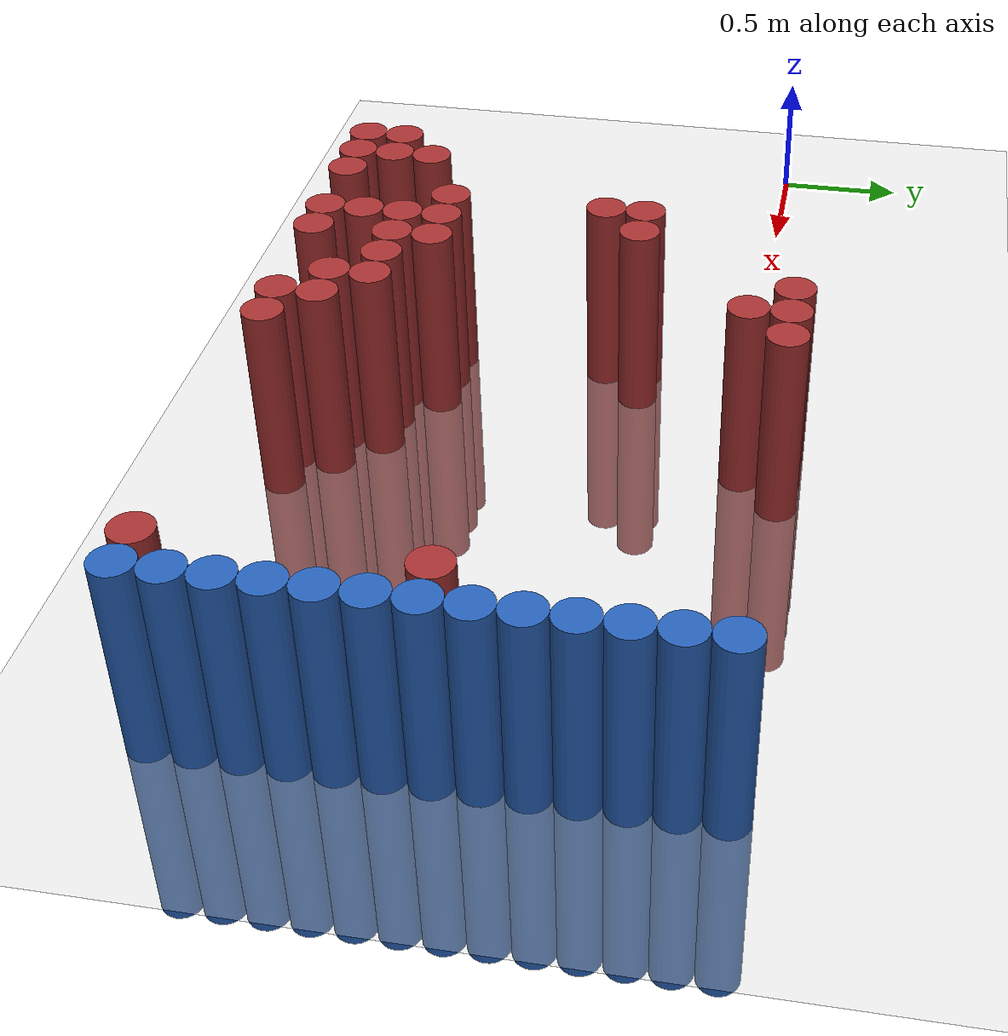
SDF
<sdf version="1.6">
 <world name="default">
  <model name="ground_plane">
   <static>1</static>
   <link name="link">
    <collision name="collision">
     <geometry><plane><normal>0 0 1</normal><size>100 100</size></plane></geometry>
     <surface><friction><ode><mu>100</mu><mu2>50</mu2></ode></friction></surface>
    </collision>
    <visual name="visual">
     <cast_shadows>0</cast_shadows>
     <geometry><plane><normal>0 0 1</normal><size>100 100</size></plane></geometry>
     <material>
      <script><uri>file://media/materials/scripts/gazebo.material</uri><name>Gazebo/Grey</name></script>
     </material>
    </visual>
   </link>
  </model>
  <model name="unit_cylinder_92">
   <static>1</static>
   <pose>3.925000 -1.625000 0.000000 0.000000 0.000000 0.000000</pose>
   <link name="link">
    <inertial>
     <mass>1</mass>
     <inertia><ixx>0.145833</ixx><ixy>0</ixy><ixz>0</ixz><iyy>0.145833</iyy><iyz>0</iyz><izz>0.125</izz></inertia>
    </inertial>
    <collision name="collision">
     <geometry><cylinder><radius>0.075000</radius><length>1.5</length></cylinder></geometry>
    </collision>
    <visual name="visual">
     <geometry><cylinder><radius>0.075000</radius><length>1.5</length></cylinder></geometry>
     <material>
      <ambient>0.152000 0.379000 0.720000 1</ambient>
      <diffuse>0.152000 0.379000 0.720000 1</diffuse>
     </material>
     <material>
      <script><name>Gazebo/Grey</name><uri>file://media/materials/scripts/gazebo.material</uri></script>
     </material>
    </visual>
   </link>
  </model>
  <model name="unit_cylinder_94">
   <static>1</static>
   <pose>3.925000 -1.475000 0.000000 0.000000 0.000000 0.000000</pose>
   <link name="link">
    <inertial>
     <mass>1</mass>
     <inertia><ixx>0.145833</ixx><ixy>0</ixy><ixz>0</ixz><iyy>0.145833</iyy><iyz>0</iyz><izz>0.125</izz></inertia>
    </inertial>
    <collision name="collision">
     <geometry><cylinder><radius>0.075000</radius><length>1.5</length></cylinder></geometry>
    </collision>
    <visual name="visual">
     <geometry><cylinder><radius>0.075000</radius><length>1.5</length></cylinder></geometry>
     <material>
      <ambient>0.152000 0.379000 0.720000 1</ambient>
      <diffuse>0.152000 0.379000 0.720000 1</diffuse>
     </material>
     <material>
      <script><name>Gazebo/Grey</name><uri>file://media/materials/scripts/gazebo.material</uri></script>
     </material>
    </visual>
   </link>
  </model>
  <model name="unit_cylinder_96">
   <static>1</static>
   <pose>3.925000 -1.325000 0.000000 0.000000 0.000000 0.000000</pose>
   <link name="link">
    <inertial>
     <mass>1</mass>
     <inertia><ixx>0.145833</ixx><ixy>0</ixy><ixz>0</ixz><iyy>0.145833</iyy><iyz>0</iyz><izz>0.125</izz></inertia>
    </inertial>
    <collision name="collision">
     <geometry><cylinder><radius>0.075000</radius><length>1.5</length></cylinder></geometry>
    </collision>
    <visual name="visual">
     <geometry><cylinder><radius>0.075000</radius><length>1.5</length></cylinder></geometry>
     <material>
      <ambient>0.152000 0.379000 0.720000 1</ambient>
      <diffuse>0.152000 0.379000 0.720000 1</diffuse>
     </material>
     <material>
      <script><name>Gazebo/Grey</name><uri>file://media/materials/scripts/gazebo.material</uri></script>
     </material>
    </visual>
   </link>
  </model>
  <model name="unit_cylinder_98">
   <static>1</static>
   <pose>3.925000 -1.175000 0.000000 0.000000 0.000000 0.000000</pose>
   <link name="link">
    <inertial>
     <mass>1</mass>
     <inertia><ixx>0.145833</ixx><ixy>0</ixy><ixz>0</ixz><iyy>0.145833</iyy><iyz>0</iyz><izz>0.125</izz></inertia>
    </inertial>
    <collision name="collision">
     <geometry><cylinder><radius>0.075000</radius><length>1.5</length></cylinder></geometry>
    </collision>
    <visual name="visual">
     <geometry><cylinder><radius>0.075000</radius><length>1.5</length></cylinder></geometry>
     <material>
      <ambient>0.152000 0.379000 0.720000 1</ambient>
      <diffuse>0.152000 0.379000 0.720000 1</diffuse>
     </material>
     <material>
      <script><name>Gazebo/Grey</name><uri>file://media/materials/scripts/gazebo.material</uri></script>
     </material>
    </visual>
   </link>
  </model>
  <model name="unit_cylinder_100">
   <static>1</static>
   <pose>3.925000 -1.025000 0.000000 0.000000 0.000000 0.000000</pose>
   <link name="link">
    <inertial>
     <mass>1</mass>
     <inertia><ixx>0.145833</ixx><ixy>0</ixy><ixz>0</ixz><iyy>0.145833</iyy><iyz>0</iyz><izz>0.125</izz></inertia>
    </inertial>
    <collision name="collision">
     <geometry><cylinder><radius>0.075000</radius><length>1.5</length></cylinder></geometry>
    </collision>
    <visual name="visual">
     <geometry><cylinder><radius>0.075000</radius><length>1.5</length></cylinder></geometry>
     <material>
      <ambient>0.152000 0.379000 0.720000 1</ambient>
      <diffuse>0.152000 0.379000 0.720000 1</diffuse>
     </material>
     <material>
      <script><name>Gazebo/Grey</name><uri>file://media/materials/scripts/gazebo.material</uri></script>
     </material>
    </visual>
   </link>
  </model>
  <model name="unit_cylinder_102">
   <static>1</static>
   <pose>3.925000 -0.875000 0.000000 0.000000 0.000000 0.000000</pose>
   <link name="link">
    <inertial>
     <mass>1</mass>
     <inertia><ixx>0.145833</ixx><ixy>0</ixy><ixz>0</ixz><iyy>0.145833</iyy><iyz>0</iyz><izz>0.125</izz></inertia>
    </inertial>
    <collision name="collision">
     <geometry><cylinder><radius>0.075000</radius><length>1.5</length></cylinder></geometry>
    </collision>
    <visual name="visual">
     <geometry><cylinder><radius>0.075000</radius><length>1.5</length></cylinder></geometry>
     <material>
      <ambient>0.152000 0.379000 0.720000 1</ambient>
      <diffuse>0.152000 0.379000 0.720000 1</diffuse>
     </material>
     <material>
      <script><name>Gazebo/Grey</name><uri>file://media/materials/scripts/gazebo.material</uri></script>
     </material>
    </visual>
   </link>
  </model>
  <model name="unit_cylinder_104">
   <static>1</static>
   <pose>3.925000 -0.725000 0.000000 0.000000 0.000000 0.000000</pose>
   <link name="link">
    <inertial>
     <mass>1</mass>
     <inertia><ixx>0.145833</ixx><ixy>0</ixy><ixz>0</ixz><iyy>0.145833</iyy><iyz>0</iyz><izz>0.125</izz></inertia>
    </inertial>
    <collision name="collision">
     <geometry><cylinder><radius>0.075000</radius><length>1.5</length></cylinder></geometry>
    </collision>
    <visual name="visual">
     <geometry><cylinder><radius>0.075000</radius><length>1.5</length></cylinder></geometry>
     <material>
      <ambient>0.152000 0.379000 0.720000 1</ambient>
      <diffuse>0.152000 0.379000 0.720000 1</diffuse>
     </material>
     <material>
      <script><name>Gazebo/Grey</name><uri>file://media/materials/scripts/gazebo.material</uri></script>
     </material>
    </visual>
   </link>
  </model>
  <model name="unit_cylinder_106">
   <static>1</static>
   <pose>3.925000 -0.575000 0.000000 0.000000 0.000000 0.000000</pose>
   <link name="link">
    <inertial>
     <mass>1</mass>
     <inertia><ixx>0.145833</ixx><ixy>0</ixy><ixz>0</ixz><iyy>0.145833</iyy><iyz>0</iyz><izz>0.125</izz></inertia>
    </inertial>
    <collision name="collision">
     <geometry><cylinder><radius>0.075000</radius><length>1.5</length></cylinder></geometry>
    </collision>
    <visual name="visual">
     <geometry><cylinder><radius>0.075000</radius><length>1.5</length></cylinder></geometry>
     <material>
      <ambient>0.152000 0.379000 0.720000 1</ambient>
      <diffuse>0.152000 0.379000 0.720000 1</diffuse>
     </material>
     <material>
      <script><name>Gazebo/Grey</name><uri>file://media/materials/scripts/gazebo.material</uri></script>
     </material>
    </visual>
   </link>
  </model>
  <model name="unit_cylinder_108">
   <static>1</static>
   <pose>3.925000 -0.425000 0.000000 0.000000 0.000000 0.000000</pose>
   <link name="link">
    <inertial>
     <mass>1</mass>
     <inertia><ixx>0.145833</ixx><ixy>0</ixy><ixz>0</ixz><iyy>0.145833</iyy><iyz>0</iyz><izz>0.125</izz></inertia>
    </inertial>
    <collision name="collision">
     <geometry><cylinder><radius>0.075000</radius><length>1.5</length></cylinder></geometry>
    </collision>
    <visual name="visual">
     <geometry><cylinder><radius>0.075000</radius><length>1.5</length></cylinder></geometry>
     <material>
      <ambient>0.152000 0.379000 0.720000 1</ambient>
      <diffuse>0.152000 0.379000 0.720000 1</diffuse>
     </material>
     <material>
      <script><name>Gazebo/Grey</name><uri>file://media/materials/scripts/gazebo.material</uri></script>
     </material>
    </visual>
   </link>
  </model>
  <model name="unit_cylinder_110">
   <static>1</static>
   <pose>3.925000 -0.275000 0.000000 0.000000 0.000000 0.000000</pose>
   <link name="link">
    <inertial>
     <mass>1</mass>
     <inertia><ixx>0.145833</ixx><ixy>0</ixy><ixz>0</ixz><iyy>0.145833</iyy><iyz>0</iyz><izz>0.125</izz></inertia>
    </inertial>
    <collision name="collision">
     <geometry><cylinder><radius>0.075000</radius><length>1.5</length></cylinder></geometry>
    </collision>
    <visual name="visual">
     <geometry><cylinder><radius>0.075000</radius><length>1.5</length></cylinder></geometry>
     <material>
      <ambient>0.152000 0.379000 0.720000 1</ambient>
      <diffuse>0.152000 0.379000 0.720000 1</diffuse>
     </material>
     <material>
      <script><name>Gazebo/Grey</name><uri>file://media/materials/scripts/gazebo.material</uri></script>
     </material>
    </visual>
   </link>
  </model>
  <model name="unit_cylinder_112">
   <static>1</static>
   <pose>3.925000 -0.125000 0.000000 0.000000 0.000000 0.000000</pose>
   <link name="link">
    <inertial>
     <mass>1</mass>
     <inertia><ixx>0.145833</ixx><ixy>0</ixy><ixz>0</ixz><iyy>0.145833</iyy><iyz>0</iyz><izz>0.125</izz></inertia>
    </inertial>
    <collision name="collision">
     <geometry><cylinder><radius>0.075000</radius><length>1.5</length></cylinder></geometry>
    </collision>
    <visual name="visual">
     <geometry><cylinder><radius>0.075000</radius><length>1.5</length></cylinder></geometry>
     <material>
      <ambient>0.152000 0.379000 0.720000 1</ambient>
      <diffuse>0.152000 0.379000 0.720000 1</diffuse>
     </material>
     <material>
      <script><name>Gazebo/Grey</name><uri>file://media/materials/scripts/gazebo.material</uri></script>
     </material>
    </visual>
   </link>
  </model>
  <model name="unit_cylinder_114">
   <static>1</static>
   <pose>3.925000 0.025000 0.000000 0.000000 0.000000 0.000000</pose>
   <link name="link">
    <inertial>
     <mass>1</mass>
     <inertia><ixx>0.145833</ixx><ixy>0</ixy><ixz>0</ixz><iyy>0.145833</iyy><iyz>0</iyz><izz>0.125</izz></inertia>
    </inertial>
    <collision name="collision">
     <geometry><cylinder><radius>0.075000</radius><length>1.5</length></cylinder></geometry>
    </collision>
    <visual name="visual">
     <geometry><cylinder><radius>0.075000</radius><length>1.5</length></cylinder></geometry>
     <material>
      <ambient>0.152000 0.379000 0.720000 1</ambient>
      <diffuse>0.152000 0.379000 0.720000 1</diffuse>
     </material>
     <material>
      <script><name>Gazebo/Grey</name><uri>file://media/materials/scripts/gazebo.material</uri></script>
     </material>
    </visual>
   </link>
  </model>
  <model name="unit_cylinder_116">
   <static>1</static>
   <pose>3.925000 0.175000 0.000000 0.000000 0.000000 0.000000</pose>
   <link name="link">
    <inertial>
     <mass>1</mass>
     <inertia><ixx>0.145833</ixx><ixy>0</ixy><ixz>0</ixz><iyy>0.145833</iyy><iyz>0</iyz><izz>0.125</izz></inertia>
    </inertial>
    <collision name="collision">
     <geometry><cylinder><radius>0.075000</radius><length>1.5</length></cylinder></geometry>
    </collision>
    <visual name="visual">
     <geometry><cylinder><radius>0.075000</radius><length>1.5</length></cylinder></geometry>
     <material>
      <ambient>0.152000 0.379000 0.720000 1</ambient>
      <diffuse>0.152000 0.379000 0.720000 1</diffuse>
     </material>
     <material>
      <script><name>Gazebo/Grey</name><uri>file://media/materials/scripts/gazebo.material</uri></script>
     </material>
    </visual>
   </link>
  </model>
  <model name="unit_cylinder_412">
   <static>1</static>
   <pose>1.225000 -1.625000 0.000000 0.000000 0.000000 0.000000</pose>
   <link name="link">
    <inertial>
     <mass>1</mass>
     <inertia><ixx>0.145833</ixx><ixy>0</ixy><ixz>0</ixz><iyy>0.145833</iyy><iyz>0</iyz><izz>0.125</izz></inertia>
    </inertial>
    <collision name="collision">
     <geometry><cylinder><radius>0.075000</radius><length>1.5</length></cylinder></geometry>
    </collision>
    <visual name="visual">
     <geometry><cylinder><radius>0.075000</radius><length>1.5</length></cylinder></geometry>
     <material>
      <ambient>0.648000 0.192000 0.192000 1</ambient>
      <diffuse>0.648000 0.192000 0.192000 1</diffuse>
     </material>
     <material>
      <script><name>Gazebo/Grey</name><uri>file://media/materials/scripts/gazebo.material</uri></script>
     </material>
    </visual>
   </link>
  </model>
  <model name="unit_cylinder_413">
   <static>1</static>
   <pose>1.225000 -1.475000 0.000000 0.000000 0.000000 0.000000</pose>
   <link name="link">
    <inertial>
     <mass>1</mass>
     <inertia><ixx>0.145833</ixx><ixy>0</ixy><ixz>0</ixz><iyy>0.145833</iyy><iyz>0</iyz><izz>0.125</izz></inertia>
    </inertial>
    <collision name="collision">
     <geometry><cylinder><radius>0.075000</radius><length>1.5</length></cylinder></geometry>
    </collision>
    <visual name="visual">
     <geometry><cylinder><radius>0.075000</radius><length>1.5</length></cylinder></geometry>
     <material>
      <ambient>0.648000 0.192000 0.192000 1</ambient>
      <diffuse>0.648000 0.192000 0.192000 1</diffuse>
     </material>
     <material>
      <script><name>Gazebo/Grey</name><uri>file://media/materials/scripts/gazebo.material</uri></script>
     </material>
    </visual>
   </link>
  </model>
  <model name="unit_cylinder_425">
   <static>1</static>
   <pose>1.375000 -1.625000 0.000000 0.000000 0.000000 0.000000</pose>
   <link name="link">
    <inertial>
     <mass>1</mass>
     <inertia><ixx>0.145833</ixx><ixy>0</ixy><ixz>0</ixz><iyy>0.145833</iyy><iyz>0</iyz><izz>0.125</izz></inertia>
    </inertial>
    <collision name="collision">
     <geometry><cylinder><radius>0.075000</radius><length>1.5</length></cylinder></geometry>
    </collision>
    <visual name="visual">
     <geometry><cylinder><radius>0.075000</radius><length>1.5</length></cylinder></geometry>
     <material>
      <ambient>0.648000 0.192000 0.192000 1</ambient>
      <diffuse>0.648000 0.192000 0.192000 1</diffuse>
     </material>
     <material>
      <script><name>Gazebo/Grey</name><uri>file://media/materials/scripts/gazebo.material</uri></script>
     </material>
    </visual>
   </link>
  </model>
  <model name="unit_cylinder_426">
   <static>1</static>
   <pose>1.375000 -1.475000 0.000000 0.000000 0.000000 0.000000</pose>
   <link name="link">
    <inertial>
     <mass>1</mass>
     <inertia><ixx>0.145833</ixx><ixy>0</ixy><ixz>0</ixz><iyy>0.145833</iyy><iyz>0</iyz><izz>0.125</izz></inertia>
    </inertial>
    <collision name="collision">
     <geometry><cylinder><radius>0.075000</radius><length>1.5</length></cylinder></geometry>
    </collision>
    <visual name="visual">
     <geometry><cylinder><radius>0.075000</radius><length>1.5</length></cylinder></geometry>
     <material>
      <ambient>0.648000 0.192000 0.192000 1</ambient>
      <diffuse>0.648000 0.192000 0.192000 1</diffuse>
     </material>
     <material>
      <script><name>Gazebo/Grey</name><uri>file://media/materials/scripts/gazebo.material</uri></script>
     </material>
    </visual>
   </link>
  </model>
  <model name="unit_cylinder_427">
   <static>1</static>
   <pose>1.375000 -1.325000 0.000000 0.000000 0.000000 0.000000</pose>
   <link name="link">
    <inertial>
     <mass>1</mass>
     <inertia><ixx>0.145833</ixx><ixy>0</ixy><ixz>0</ixz><iyy>0.145833</iyy><iyz>0</iyz><izz>0.125</izz></inertia>
    </inertial>
    <collision name="collision">
     <geometry><cylinder><radius>0.075000</radius><length>1.5</length></cylinder></geometry>
    </collision>
    <visual name="visual">
     <geometry><cylinder><radius>0.075000</radius><length>1.5</length></cylinder></geometry>
     <material>
      <ambient>0.648000 0.192000 0.192000 1</ambient>
      <diffuse>0.648000 0.192000 0.192000 1</diffuse>
     </material>
     <material>
      <script><name>Gazebo/Grey</name><uri>file://media/materials/scripts/gazebo.material</uri></script>
     </material>
    </visual>
   </link>
  </model>
  <model name="unit_cylinder_440">
   <static>1</static>
   <pose>1.525000 -1.625000 0.000000 0.000000 0.000000 0.000000</pose>
   <link name="link">
    <inertial>
     <mass>1</mass>
     <inertia><ixx>0.145833</ixx><ixy>0</ixy><ixz>0</ixz><iyy>0.145833</iyy><iyz>0</iyz><izz>0.125</izz></inertia>
    </inertial>
    <collision name="collision">
     <geometry><cylinder><radius>0.075000</radius><length>1.5</length></cylinder></geometry>
    </collision>
    <visual name="visual">
     <geometry><cylinder><radius>0.075000</radius><length>1.5</length></cylinder></geometry>
     <material>
      <ambient>0.648000 0.192000 0.192000 1</ambient>
      <diffuse>0.648000 0.192000 0.192000 1</diffuse>
     </material>
     <material>
      <script><name>Gazebo/Grey</name><uri>file://media/materials/scripts/gazebo.material</uri></script>
     </material>
    </visual>
   </link>
  </model>
  <model name="unit_cylinder_448">
   <static>1</static>
   <pose>1.675000 -1.175000 0.000000 0.000000 0.000000 0.000000</pose>
   <link name="link">
    <inertial>
     <mass>1</mass>
     <inertia><ixx>0.145833</ixx><ixy>0</ixy><ixz>0</ixz><iyy>0.145833</iyy><iyz>0</iyz><izz>0.125</izz></inertia>
    </inertial>
    <collision name="collision">
     <geometry><cylinder><radius>0.075000</radius><length>1.5</length></cylinder></geometry>
    </collision>
    <visual name="visual">
     <geometry><cylinder><radius>0.075000</radius><length>1.5</length></cylinder></geometry>
     <material>
      <ambient>0.648000 0.192000 0.192000 1</ambient>
      <diffuse>0.648000 0.192000 0.192000 1</diffuse>
     </material>
     <material>
      <script><name>Gazebo/Grey</name><uri>file://media/materials/scripts/gazebo.material</uri></script>
     </material>
    </visual>
   </link>
  </model>
  <model name="unit_cylinder_449">
   <static>1</static>
   <pose>1.675000 -0.575000 0.000000 0.000000 0.000000 0.000000</pose>
   <link name="link">
    <inertial>
     <mass>1</mass>
     <inertia><ixx>0.145833</ixx><ixy>0</ixy><ixz>0</ixz><iyy>0.145833</iyy><iyz>0</iyz><izz>0.125</izz></inertia>
    </inertial>
    <collision name="collision">
     <geometry><cylinder><radius>0.075000</radius><length>1.5</length></cylinder></geometry>
    </collision>
    <visual name="visual">
     <geometry><cylinder><radius>0.075000</radius><length>1.5</length></cylinder></geometry>
     <material>
      <ambient>0.648000 0.192000 0.192000 1</ambient>
      <diffuse>0.648000 0.192000 0.192000 1</diffuse>
     </material>
     <material>
      <script><name>Gazebo/Grey</name><uri>file://media/materials/scripts/gazebo.material</uri></script>
     </material>
    </visual>
   </link>
  </model>
  <model name="unit_cylinder_450">
   <static>1</static>
   <pose>1.675000 -0.425000 0.000000 0.000000 0.000000 0.000000</pose>
   <link name="link">
    <inertial>
     <mass>1</mass>
     <inertia><ixx>0.145833</ixx><ixy>0</ixy><ixz>0</ixz><iyy>0.145833</iyy><iyz>0</iyz><izz>0.125</izz></inertia>
    </inertial>
    <collision name="collision">
     <geometry><cylinder><radius>0.075000</radius><length>1.5</length></cylinder></geometry>
    </collision>
    <visual name="visual">
     <geometry><cylinder><radius>0.075000</radius><length>1.5</length></cylinder></geometry>
     <material>
      <ambient>0.648000 0.192000 0.192000 1</ambient>
      <diffuse>0.648000 0.192000 0.192000 1</diffuse>
     </material>
     <material>
      <script><name>Gazebo/Grey</name><uri>file://media/materials/scripts/gazebo.material</uri></script>
     </material>
    </visual>
   </link>
  </model>
  <model name="unit_cylinder_456">
   <static>1</static>
   <pose>1.825000 -1.625000 0.000000 0.000000 0.000000 0.000000</pose>
   <link name="link">
    <inertial>
     <mass>1</mass>
     <inertia><ixx>0.145833</ixx><ixy>0</ixy><ixz>0</ixz><iyy>0.145833</iyy><iyz>0</iyz><izz>0.125</izz></inertia>
    </inertial>
    <collision name="collision">
     <geometry><cylinder><radius>0.075000</radius><length>1.5</length></cylinder></geometry>
    </collision>
    <visual name="visual">
     <geometry><cylinder><radius>0.075000</radius><length>1.5</length></cylinder></geometry>
     <material>
      <ambient>0.648000 0.192000 0.192000 1</ambient>
      <diffuse>0.648000 0.192000 0.192000 1</diffuse>
     </material>
     <material>
      <script><name>Gazebo/Grey</name><uri>file://media/materials/scripts/gazebo.material</uri></script>
     </material>
    </visual>
   </link>
  </model>
  <model name="unit_cylinder_457">
   <static>1</static>
   <pose>1.825000 -1.475000 0.000000 0.000000 0.000000 0.000000</pose>
   <link name="link">
    <inertial>
     <mass>1</mass>
     <inertia><ixx>0.145833</ixx><ixy>0</ixy><ixz>0</ixz><iyy>0.145833</iyy><iyz>0</iyz><izz>0.125</izz></inertia>
    </inertial>
    <collision name="collision">
     <geometry><cylinder><radius>0.075000</radius><length>1.5</length></cylinder></geometry>
    </collision>
    <visual name="visual">
     <geometry><cylinder><radius>0.075000</radius><length>1.5</length></cylinder></geometry>
     <material>
      <ambient>0.648000 0.192000 0.192000 1</ambient>
      <diffuse>0.648000 0.192000 0.192000 1</diffuse>
     </material>
     <material>
      <script><name>Gazebo/Grey</name><uri>file://media/materials/scripts/gazebo.material</uri></script>
     </material>
    </visual>
   </link>
  </model>
  <model name="unit_cylinder_458">
   <static>1</static>
   <pose>1.825000 -1.325000 0.000000 0.000000 0.000000 0.000000</pose>
   <link name="link">
    <inertial>
     <mass>1</mass>
     <inertia><ixx>0.145833</ixx><ixy>0</ixy><ixz>0</ixz><iyy>0.145833</iyy><iyz>0</iyz><izz>0.125</izz></inertia>
    </inertial>
    <collision name="collision">
     <geometry><cylinder><radius>0.075000</radius><length>1.5</length></cylinder></geometry>
    </collision>
    <visual name="visual">
     <geometry><cylinder><radius>0.075000</radius><length>1.5</length></cylinder></geometry>
     <material>
      <ambient>0.648000 0.192000 0.192000 1</ambient>
      <diffuse>0.648000 0.192000 0.192000 1</diffuse>
     </material>
     <material>
      <script><name>Gazebo/Grey</name><uri>file://media/materials/scripts/gazebo.material</uri></script>
     </material>
    </visual>
   </link>
  </model>
  <model name="unit_cylinder_459">
   <static>1</static>
   <pose>1.825000 -1.175000 0.000000 0.000000 0.000000 0.000000</pose>
   <link name="link">
    <inertial>
     <mass>1</mass>
     <inertia><ixx>0.145833</ixx><ixy>0</ixy><ixz>0</ixz><iyy>0.145833</iyy><iyz>0</iyz><izz>0.125</izz></inertia>
    </inertial>
    <collision name="collision">
     <geometry><cylinder><radius>0.075000</radius><length>1.5</length></cylinder></geometry>
    </collision>
    <visual name="visual">
     <geometry><cylinder><radius>0.075000</radius><length>1.5</length></cylinder></geometry>
     <material>
      <ambient>0.648000 0.192000 0.192000 1</ambient>
      <diffuse>0.648000 0.192000 0.192000 1</diffuse>
     </material>
     <material>
      <script><name>Gazebo/Grey</name><uri>file://media/materials/scripts/gazebo.material</uri></script>
     </material>
    </visual>
   </link>
  </model>
  <model name="unit_cylinder_460">
   <static>1</static>
   <pose>1.825000 -0.425000 0.000000 0.000000 0.000000 0.000000</pose>
   <link name="link">
    <inertial>
     <mass>1</mass>
     <inertia><ixx>0.145833</ixx><ixy>0</ixy><ixz>0</ixz><iyy>0.145833</iyy><iyz>0</iyz><izz>0.125</izz></inertia>
    </inertial>
    <collision name="collision">
     <geometry><cylinder><radius>0.075000</radius><length>1.5</length></cylinder></geometry>
    </collision>
    <visual name="visual">
     <geometry><cylinder><radius>0.075000</radius><length>1.5</length></cylinder></geometry>
     <material>
      <ambient>0.648000 0.192000 0.192000 1</ambient>
      <diffuse>0.648000 0.192000 0.192000 1</diffuse>
     </material>
     <material>
      <script><name>Gazebo/Grey</name><uri>file://media/materials/scripts/gazebo.material</uri></script>
     </material>
    </visual>
   </link>
  </model>
  <model name="unit_cylinder_468">
   <static>1</static>
   <pose>1.975000 -1.625000 0.000000 0.000000 0.000000 0.000000</pose>
   <link name="link">
    <inertial>
     <mass>1</mass>
     <inertia><ixx>0.145833</ixx><ixy>0</ixy><ixz>0</ixz><iyy>0.145833</iyy><iyz>0</iyz><izz>0.125</izz></inertia>
    </inertial>
    <collision name="collision">
     <geometry><cylinder><radius>0.075000</radius><length>1.5</length></cylinder></geometry>
    </collision>
    <visual name="visual">
     <geometry><cylinder><radius>0.075000</radius><length>1.5</length></cylinder></geometry>
     <material>
      <ambient>0.648000 0.192000 0.192000 1</ambient>
      <diffuse>0.648000 0.192000 0.192000 1</diffuse>
     </material>
     <material>
      <script><name>Gazebo/Grey</name><uri>file://media/materials/scripts/gazebo.material</uri></script>
     </material>
    </visual>
   </link>
  </model>
  <model name="unit_cylinder_469">
   <static>1</static>
   <pose>1.975000 -1.325000 0.000000 0.000000 0.000000 0.000000</pose>
   <link name="link">
    <inertial>
     <mass>1</mass>
     <inertia><ixx>0.145833</ixx><ixy>0</ixy><ixz>0</ixz><iyy>0.145833</iyy><iyz>0</iyz><izz>0.125</izz></inertia>
    </inertial>
    <collision name="collision">
     <geometry><cylinder><radius>0.075000</radius><length>1.5</length></cylinder></geometry>
    </collision>
    <visual name="visual">
     <geometry><cylinder><radius>0.075000</radius><length>1.5</length></cylinder></geometry>
     <material>
      <ambient>0.648000 0.192000 0.192000 1</ambient>
      <diffuse>0.648000 0.192000 0.192000 1</diffuse>
     </material>
     <material>
      <script><name>Gazebo/Grey</name><uri>file://media/materials/scripts/gazebo.material</uri></script>
     </material>
    </visual>
   </link>
  </model>
  <model name="unit_cylinder_470">
   <static>1</static>
   <pose>1.975000 -1.175000 0.000000 0.000000 0.000000 0.000000</pose>
   <link name="link">
    <inertial>
     <mass>1</mass>
     <inertia><ixx>0.145833</ixx><ixy>0</ixy><ixz>0</ixz><iyy>0.145833</iyy><iyz>0</iyz><izz>0.125</izz></inertia>
    </inertial>
    <collision name="collision">
     <geometry><cylinder><radius>0.075000</radius><length>1.5</length></cylinder></geometry>
    </collision>
    <visual name="visual">
     <geometry><cylinder><radius>0.075000</radius><length>1.5</length></cylinder></geometry>
     <material>
      <ambient>0.648000 0.192000 0.192000 1</ambient>
      <diffuse>0.648000 0.192000 0.192000 1</diffuse>
     </material>
     <material>
      <script><name>Gazebo/Grey</name><uri>file://media/materials/scripts/gazebo.material</uri></script>
     </material>
    </visual>
   </link>
  </model>
  <model name="unit_cylinder_479">
   <static>1</static>
   <pose>2.125000 -1.325000 0.000000 0.000000 0.000000 0.000000</pose>
   <link name="link">
    <inertial>
     <mass>1</mass>
     <inertia><ixx>0.145833</ixx><ixy>0</ixy><ixz>0</ixz><iyy>0.145833</iyy><iyz>0</iyz><izz>0.125</izz></inertia>
    </inertial>
    <collision name="collision">
     <geometry><cylinder><radius>0.075000</radius><length>1.5</length></cylinder></geometry>
    </collision>
    <visual name="visual">
     <geometry><cylinder><radius>0.075000</radius><length>1.5</length></cylinder></geometry>
     <material>
      <ambient>0.648000 0.192000 0.192000 1</ambient>
      <diffuse>0.648000 0.192000 0.192000 1</diffuse>
     </material>
     <material>
      <script><name>Gazebo/Grey</name><uri>file://media/materials/scripts/gazebo.material</uri></script>
     </material>
    </visual>
   </link>
  </model>
  <model name="unit_cylinder_480">
   <static>1</static>
   <pose>2.125000 0.175000 0.000000 0.000000 0.000000 0.000000</pose>
   <link name="link">
    <inertial>
     <mass>1</mass>
     <inertia><ixx>0.145833</ixx><ixy>0</ixy><ixz>0</ixz><iyy>0.145833</iyy><iyz>0</iyz><izz>0.125</izz></inertia>
    </inertial>
    <collision name="collision">
     <geometry><cylinder><radius>0.075000</radius><length>1.5</length></cylinder></geometry>
    </collision>
    <visual name="visual">
     <geometry><cylinder><radius>0.075000</radius><length>1.5</length></cylinder></geometry>
     <material>
      <ambient>0.648000 0.192000 0.192000 1</ambient>
      <diffuse>0.648000 0.192000 0.192000 1</diffuse>
     </material>
     <material>
      <script><name>Gazebo/Grey</name><uri>file://media/materials/scripts/gazebo.material</uri></script>
     </material>
    </visual>
   </link>
  </model>
  <model name="unit_cylinder_488">
   <static>1</static>
   <pose>2.275000 -1.475000 0.000000 0.000000 0.000000 0.000000</pose>
   <link name="link">
    <inertial>
     <mass>1</mass>
     <inertia><ixx>0.145833</ixx><ixy>0</ixy><ixz>0</ixz><iyy>0.145833</iyy><iyz>0</iyz><izz>0.125</izz></inertia>
    </inertial>
    <collision name="collision">
     <geometry><cylinder><radius>0.075000</radius><length>1.5</length></cylinder></geometry>
    </collision>
    <visual name="visual">
     <geometry><cylinder><radius>0.075000</radius><length>1.5</length></cylinder></geometry>
     <material>
      <ambient>0.648000 0.192000 0.192000 1</ambient>
      <diffuse>0.648000 0.192000 0.192000 1</diffuse>
     </material>
     <material>
      <script><name>Gazebo/Grey</name><uri>file://media/materials/scripts/gazebo.material</uri></script>
     </material>
    </visual>
   </link>
  </model>
  <model name="unit_cylinder_489">
   <static>1</static>
   <pose>2.275000 -1.325000 0.000000 0.000000 0.000000 0.000000</pose>
   <link name="link">
    <inertial>
     <mass>1</mass>
     <inertia><ixx>0.145833</ixx><ixy>0</ixy><ixz>0</ixz><iyy>0.145833</iyy><iyz>0</iyz><izz>0.125</izz></inertia>
    </inertial>
    <collision name="collision">
     <geometry><cylinder><radius>0.075000</radius><length>1.5</length></cylinder></geometry>
    </collision>
    <visual name="visual">
     <geometry><cylinder><radius>0.075000</radius><length>1.5</length></cylinder></geometry>
     <material>
      <ambient>0.648000 0.192000 0.192000 1</ambient>
      <diffuse>0.648000 0.192000 0.192000 1</diffuse>
     </material>
     <material>
      <script><name>Gazebo/Grey</name><uri>file://media/materials/scripts/gazebo.material</uri></script>
     </material>
    </visual>
   </link>
  </model>
  <model name="unit_cylinder_490">
   <static>1</static>
   <pose>2.275000 0.025000 0.000000 0.000000 0.000000 0.000000</pose>
   <link name="link">
    <inertial>
     <mass>1</mass>
     <inertia><ixx>0.145833</ixx><ixy>0</ixy><ixz>0</ixz><iyy>0.145833</iyy><iyz>0</iyz><izz>0.125</izz></inertia>
    </inertial>
    <collision name="collision">
     <geometry><cylinder><radius>0.075000</radius><length>1.5</length></cylinder></geometry>
    </collision>
    <visual name="visual">
     <geometry><cylinder><radius>0.075000</radius><length>1.5</length></cylinder></geometry>
     <material>
      <ambient>0.648000 0.192000 0.192000 1</ambient>
      <diffuse>0.648000 0.192000 0.192000 1</diffuse>
     </material>
     <material>
      <script><name>Gazebo/Grey</name><uri>file://media/materials/scripts/gazebo.material</uri></script>
     </material>
    </visual>
   </link>
  </model>
  <model name="unit_cylinder_491">
   <static>1</static>
   <pose>2.275000 0.175000 0.000000 0.000000 0.000000 0.000000</pose>
   <link name="link">
    <inertial>
     <mass>1</mass>
     <inertia><ixx>0.145833</ixx><ixy>0</ixy><ixz>0</ixz><iyy>0.145833</iyy><iyz>0</iyz><izz>0.125</izz></inertia>
    </inertial>
    <collision name="collision">
     <geometry><cylinder><radius>0.075000</radius><length>1.5</length></cylinder></geometry>
    </collision>
    <visual name="visual">
     <geometry><cylinder><radius>0.075000</radius><length>1.5</length></cylinder></geometry>
     <material>
      <ambient>0.648000 0.192000 0.192000 1</ambient>
      <diffuse>0.648000 0.192000 0.192000 1</diffuse>
     </material>
     <material>
      <script><name>Gazebo/Grey</name><uri>file://media/materials/scripts/gazebo.material</uri></script>
     </material>
    </visual>
   </link>
  </model>
  <model name="unit_cylinder_503">
   <static>1</static>
   <pose>2.425000 -1.625000 0.000000 0.000000 0.000000 0.000000</pose>
   <link name="link">
    <inertial>
     <mass>1</mass>
     <inertia><ixx>0.145833</ixx><ixy>0</ixy><ixz>0</ixz><iyy>0.145833</iyy><iyz>0</iyz><izz>0.125</izz></inertia>
    </inertial>
    <collision name="collision">
     <geometry><cylinder><radius>0.075000</radius><length>1.5</length></cylinder></geometry>
    </collision>
    <visual name="visual">
     <geometry><cylinder><radius>0.075000</radius><length>1.5</length></cylinder></geometry>
     <material>
      <ambient>0.648000 0.192000 0.192000 1</ambient>
      <diffuse>0.648000 0.192000 0.192000 1</diffuse>
     </material>
     <material>
      <script><name>Gazebo/Grey</name><uri>file://media/materials/scripts/gazebo.material</uri></script>
     </material>
    </visual>
   </link>
  </model>
  <model name="unit_cylinder_504">
   <static>1</static>
   <pose>2.425000 -1.475000 0.000000 0.000000 0.000000 0.000000</pose>
   <link name="link">
    <inertial>
     <mass>1</mass>
     <inertia><ixx>0.145833</ixx><ixy>0</ixy><ixz>0</ixz><iyy>0.145833</iyy><iyz>0</iyz><izz>0.125</izz></inertia>
    </inertial>
    <collision name="collision">
     <geometry><cylinder><radius>0.075000</radius><length>1.5</length></cylinder></geometry>
    </collision>
    <visual name="visual">
     <geometry><cylinder><radius>0.075000</radius><length>1.5</length></cylinder></geometry>
     <material>
      <ambient>0.648000 0.192000 0.192000 1</ambient>
      <diffuse>0.648000 0.192000 0.192000 1</diffuse>
     </material>
     <material>
      <script><name>Gazebo/Grey</name><uri>file://media/materials/scripts/gazebo.material</uri></script>
     </material>
    </visual>
   </link>
  </model>
  <model name="unit_cylinder_505">
   <static>1</static>
   <pose>2.425000 0.175000 0.000000 0.000000 0.000000 0.000000</pose>
   <link name="link">
    <inertial>
     <mass>1</mass>
     <inertia><ixx>0.145833</ixx><ixy>0</ixy><ixz>0</ixz><iyy>0.145833</iyy><iyz>0</iyz><izz>0.125</izz></inertia>
    </inertial>
    <collision name="collision">
     <geometry><cylinder><radius>0.075000</radius><length>1.5</length></cylinder></geometry>
    </collision>
    <visual name="visual">
     <geometry><cylinder><radius>0.075000</radius><length>1.5</length></cylinder></geometry>
     <material>
      <ambient>0.648000 0.192000 0.192000 1</ambient>
      <diffuse>0.648000 0.192000 0.192000 1</diffuse>
     </material>
     <material>
      <script><name>Gazebo/Grey</name><uri>file://media/materials/scripts/gazebo.material</uri></script>
     </material>
    </visual>
   </link>
  </model>
  <model name="unit_cylinder_515">
   <static>1</static>
   <pose>2.575000 -1.625000 0.000000 0.000000 0.000000 0.000000</pose>
   <link name="link">
    <inertial>
     <mass>1</mass>
     <inertia><ixx>0.145833</ixx><ixy>0</ixy><ixz>0</ixz><iyy>0.145833</iyy><iyz>0</iyz><izz>0.125</izz></inertia>
    </inertial>
    <collision name="collision">
     <geometry><cylinder><radius>0.075000</radius><length>1.5</length></cylinder></geometry>
    </collision>
    <visual name="visual">
     <geometry><cylinder><radius>0.075000</radius><length>1.5</length></cylinder></geometry>
     <material>
      <ambient>0.648000 0.192000 0.192000 1</ambient>
      <diffuse>0.648000 0.192000 0.192000 1</diffuse>
     </material>
     <material>
      <script><name>Gazebo/Grey</name><uri>file://media/materials/scripts/gazebo.material</uri></script>
     </material>
    </visual>
   </link>
  </model>
  <model name="unit_cylinder_578">
   <static>1</static>
   <pose>3.775000 -1.625000 0.000000 0.000000 0.000000 0.000000</pose>
   <link name="link">
    <inertial>
     <mass>1</mass>
     <inertia><ixx>0.145833</ixx><ixy>0</ixy><ixz>0</ixz><iyy>0.145833</iyy><iyz>0</iyz><izz>0.125</izz></inertia>
    </inertial>
    <collision name="collision">
     <geometry><cylinder><radius>0.075000</radius><length>1.5</length></cylinder></geometry>
    </collision>
    <visual name="visual">
     <geometry><cylinder><radius>0.075000</radius><length>1.5</length></cylinder></geometry>
     <material>
      <ambient>0.648000 0.192000 0.192000 1</ambient>
      <diffuse>0.648000 0.192000 0.192000 1</diffuse>
     </material>
     <material>
      <script><name>Gazebo/Grey</name><uri>file://media/materials/scripts/gazebo.material</uri></script>
     </material>
    </visual>
   </link>
  </model>
  <model name="unit_cylinder_579">
   <static>1</static>
   <pose>3.775000 -0.725000 0.000000 0.000000 0.000000 0.000000</pose>
   <link name="link">
    <inertial>
     <mass>1</mass>
     <inertia><ixx>0.145833</ixx><ixy>0</ixy><ixz>0</ixz><iyy>0.145833</iyy><iyz>0</iyz><izz>0.125</izz></inertia>
    </inertial>
    <collision name="collision">
     <geometry><cylinder><radius>0.075000</radius><length>1.5</length></cylinder></geometry>
    </collision>
    <visual name="visual">
     <geometry><cylinder><radius>0.075000</radius><length>1.5</length></cylinder></geometry>
     <material>
      <ambient>0.648000 0.192000 0.192000 1</ambient>
      <diffuse>0.648000 0.192000 0.192000 1</diffuse>
     </material>
     <material>
      <script><name>Gazebo/Grey</name><uri>file://media/materials/scripts/gazebo.material</uri></script>
     </material>
    </visual>
   </link>
  </model>
  <model name="unit_cylinder_602">
   <static>1</static>
   <pose>3.925000 -1.625000 0.000000 0.000000 0.000000 0.000000</pose>
   <link name="link">
    <inertial>
     <mass>1</mass>
     <inertia><ixx>0.145833</ixx><ixy>0</ixy><ixz>0</ixz><iyy>0.145833</iyy><iyz>0</iyz><izz>0.125</izz></inertia>
    </inertial>
    <collision name="collision">
     <geometry><cylinder><radius>0.075000</radius><length>1.5</length></cylinder></geometry>
    </collision>
    <visual name="visual">
     <geometry><cylinder><radius>0.075000</radius><length>1.5</length></cylinder></geometry>
     <material>
      <ambient>0.152000 0.379000 0.720000 1</ambient>
      <diffuse>0.152000 0.379000 0.720000 1</diffuse>
     </material>
     <material>
      <script><name>Gazebo/Grey</name><uri>file://media/materials/scripts/gazebo.material</uri></script>
     </material>
    </visual>
   </link>
  </model>
  <model name="unit_cylinder_603">
   <static>1</static>
   <pose>3.925000 -1.475000 0.000000 0.000000 0.000000 0.000000</pose>
   <link name="link">
    <inertial>
     <mass>1</mass>
     <inertia><ixx>0.145833</ixx><ixy>0</ixy><ixz>0</ixz><iyy>0.145833</iyy><iyz>0</iyz><izz>0.125</izz></inertia>
    </inertial>
    <collision name="collision">
     <geometry><cylinder><radius>0.075000</radius><length>1.5</length></cylinder></geometry>
    </collision>
    <visual name="visual">
     <geometry><cylinder><radius>0.075000</radius><length>1.5</length></cylinder></geometry>
     <material>
      <ambient>0.152000 0.379000 0.720000 1</ambient>
      <diffuse>0.152000 0.379000 0.720000 1</diffuse>
     </material>
     <material>
      <script><name>Gazebo/Grey</name><uri>file://media/materials/scripts/gazebo.material</uri></script>
     </material>
    </visual>
   </link>
  </model>
  <model name="unit_cylinder_604">
   <static>1</static>
   <pose>3.925000 -1.325000 0.000000 0.000000 0.000000 0.000000</pose>
   <link name="link">
    <inertial>
     <mass>1</mass>
     <inertia><ixx>0.145833</ixx><ixy>0</ixy><ixz>0</ixz><iyy>0.145833</iyy><iyz>0</iyz><izz>0.125</izz></inertia>
    </inertial>
    <collision name="collision">
     <geometry><cylinder><radius>0.075000</radius><length>1.5</length></cylinder></geometry>
    </collision>
    <visual name="visual">
     <geometry><cylinder><radius>0.075000</radius><length>1.5</length></cylinder></geometry>
     <material>
      <ambient>0.152000 0.379000 0.720000 1</ambient>
      <diffuse>0.152000 0.379000 0.720000 1</diffuse>
     </material>
     <material>
      <script><name>Gazebo/Grey</name><uri>file://media/materials/scripts/gazebo.material</uri></script>
     </material>
    </visual>
   </link>
  </model>
  <model name="unit_cylinder_605">
   <static>1</static>
   <pose>3.925000 -1.175000 0.000000 0.000000 0.000000 0.000000</pose>
   <link name="link">
    <inertial>
     <mass>1</mass>
     <inertia><ixx>0.145833</ixx><ixy>0</ixy><ixz>0</ixz><iyy>0.145833</iyy><iyz>0</iyz><izz>0.125</izz></inertia>
    </inertial>
    <collision name="collision">
     <geometry><cylinder><radius>0.075000</radius><length>1.5</length></cylinder></geometry>
    </collision>
    <visual name="visual">
     <geometry><cylinder><radius>0.075000</radius><length>1.5</length></cylinder></geometry>
     <material>
      <ambient>0.152000 0.379000 0.720000 1</ambient>
      <diffuse>0.152000 0.379000 0.720000 1</diffuse>
     </material>
     <material>
      <script><name>Gazebo/Grey</name><uri>file://media/materials/scripts/gazebo.material</uri></script>
     </material>
    </visual>
   </link>
  </model>
  <model name="unit_cylinder_606">
   <static>1</static>
   <pose>3.925000 -1.025000 0.000000 0.000000 0.000000 0.000000</pose>
   <link name="link">
    <inertial>
     <mass>1</mass>
     <inertia><ixx>0.145833</ixx><ixy>0</ixy><ixz>0</ixz><iyy>0.145833</iyy><iyz>0</iyz><izz>0.125</izz></inertia>
    </inertial>
    <collision name="collision">
     <geometry><cylinder><radius>0.075000</radius><length>1.5</length></cylinder></geometry>
    </collision>
    <visual name="visual">
     <geometry><cylinder><radius>0.075000</radius><length>1.5</length></cylinder></geometry>
     <material>
      <ambient>0.152000 0.379000 0.720000 1</ambient>
      <diffuse>0.152000 0.379000 0.720000 1</diffuse>
     </material>
     <material>
      <script><name>Gazebo/Grey</name><uri>file://media/materials/scripts/gazebo.material</uri></script>
     </material>
    </visual>
   </link>
  </model>
  <model name="unit_cylinder_607">
   <static>1</static>
   <pose>3.925000 -0.875000 0.000000 0.000000 0.000000 0.000000</pose>
   <link name="link">
    <inertial>
     <mass>1</mass>
     <inertia><ixx>0.145833</ixx><ixy>0</ixy><ixz>0</ixz><iyy>0.145833</iyy><iyz>0</iyz><izz>0.125</izz></inertia>
    </inertial>
    <collision name="collision">
     <geometry><cylinder><radius>0.075000</radius><length>1.5</length></cylinder></geometry>
    </collision>
    <visual name="visual">
     <geometry><cylinder><radius>0.075000</radius><length>1.5</length></cylinder></geometry>
     <material>
      <ambient>0.152000 0.379000 0.720000 1</ambient>
      <diffuse>0.152000 0.379000 0.720000 1</diffuse>
     </material>
     <material>
      <script><name>Gazebo/Grey</name><uri>file://media/materials/scripts/gazebo.material</uri></script>
     </material>
    </visual>
   </link>
  </model>
  <model name="unit_cylinder_608">
   <static>1</static>
   <pose>3.925000 -0.725000 0.000000 0.000000 0.000000 0.000000</pose>
   <link name="link">
    <inertial>
     <mass>1</mass>
     <inertia><ixx>0.145833</ixx><ixy>0</ixy><ixz>0</ixz><iyy>0.145833</iyy><iyz>0</iyz><izz>0.125</izz></inertia>
    </inertial>
    <collision name="collision">
     <geometry><cylinder><radius>0.075000</radius><length>1.5</length></cylinder></geometry>
    </collision>
    <visual name="visual">
     <geometry><cylinder><radius>0.075000</radius><length>1.5</length></cylinder></geometry>
     <material>
      <ambient>0.152000 0.379000 0.720000 1</ambient>
      <diffuse>0.152000 0.379000 0.720000 1</diffuse>
     </material>
     <material>
      <script><name>Gazebo/Grey</name><uri>file://media/materials/scripts/gazebo.material</uri></script>
     </material>
    </visual>
   </link>
  </model>
  <model name="unit_cylinder_609">
   <static>1</static>
   <pose>3.925000 -0.575000 0.000000 0.000000 0.000000 0.000000</pose>
   <link name="link">
    <inertial>
     <mass>1</mass>
     <inertia><ixx>0.145833</ixx><ixy>0</ixy><ixz>0</ixz><iyy>0.145833</iyy><iyz>0</iyz><izz>0.125</izz></inertia>
    </inertial>
    <collision name="collision">
     <geometry><cylinder><radius>0.075000</radius><length>1.5</length></cylinder></geometry>
    </collision>
    <visual name="visual">
     <geometry><cylinder><radius>0.075000</radius><length>1.5</length></cylinder></geometry>
     <material>
      <ambient>0.152000 0.379000 0.720000 1</ambient>
      <diffuse>0.152000 0.379000 0.720000 1</diffuse>
     </material>
     <material>
      <script><name>Gazebo/Grey</name><uri>file://media/materials/scripts/gazebo.material</uri></script>
     </material>
    </visual>
   </link>
  </model>
  <model name="unit_cylinder_610">
   <static>1</static>
   <pose>3.925000 -0.425000 0.000000 0.000000 0.000000 0.000000</pose>
   <link name="link">
    <inertial>
     <mass>1</mass>
     <inertia><ixx>0.145833</ixx><ixy>0</ixy><ixz>0</ixz><iyy>0.145833</iyy><iyz>0</iyz><izz>0.125</izz></inertia>
    </inertial>
    <collision name="collision">
     <geometry><cylinder><radius>0.075000</radius><length>1.5</length></cylinder></geometry>
    </collision>
    <visual name="visual">
     <geometry><cylinder><radius>0.075000</radius><length>1.5</length></cylinder></geometry>
     <material>
      <ambient>0.152000 0.379000 0.720000 1</ambient>
      <diffuse>0.152000 0.379000 0.720000 1</diffuse>
     </material>
     <material>
      <script><name>Gazebo/Grey</name><uri>file://media/materials/scripts/gazebo.material</uri></script>
     </material>
    </visual>
   </link>
  </model>
  <model name="unit_cylinder_611">
   <static>1</static>
   <pose>3.925000 -0.275000 0.000000 0.000000 0.000000 0.000000</pose>
   <link name="link">
    <inertial>
     <mass>1</mass>
     <inertia><ixx>0.145833</ixx><ixy>0</ixy><ixz>0</ixz><iyy>0.145833</iyy><iyz>0</iyz><izz>0.125</izz></inertia>
    </inertial>
    <collision name="collision">
     <geometry><cylinder><radius>0.075000</radius><length>1.5</length></cylinder></geometry>
    </collision>
    <visual name="visual">
     <geometry><cylinder><radius>0.075000</radius><length>1.5</length></cylinder></geometry>
     <material>
      <ambient>0.152000 0.379000 0.720000 1</ambient>
      <diffuse>0.152000 0.379000 0.720000 1</diffuse>
     </material>
     <material>
      <script><name>Gazebo/Grey</name><uri>file://media/materials/scripts/gazebo.material</uri></script>
     </material>
    </visual>
   </link>
  </model>
  <model name="unit_cylinder_612">
   <static>1</static>
   <pose>3.925000 -0.125000 0.000000 0.000000 0.000000 0.000000</pose>
   <link name="link">
    <inertial>
     <mass>1</mass>
     <inertia><ixx>0.145833</ixx><ixy>0</ixy><ixz>0</ixz><iyy>0.145833</iyy><iyz>0</iyz><izz>0.125</izz></inertia>
    </inertial>
    <collision name="collision">
     <geometry><cylinder><radius>0.075000</radius><length>1.5</length></cylinder></geometry>
    </collision>
    <visual name="visual">
     <geometry><cylinder><radius>0.075000</radius><length>1.5</length></cylinder></geometry>
     <material>
      <ambient>0.152000 0.379000 0.720000 1</ambient>
      <diffuse>0.152000 0.379000 0.720000 1</diffuse>
     </material>
     <material>
      <script><name>Gazebo/Grey</name><uri>file://media/materials/scripts/gazebo.material</uri></script>
     </material>
    </visual>
   </link>
  </model>
  <model name="unit_cylinder_613">
   <static>1</static>
   <pose>3.925000 0.025000 0.000000 0.000000 0.000000 0.000000</pose>
   <link name="link">
    <inertial>
     <mass>1</mass>
     <inertia><ixx>0.145833</ixx><ixy>0</ixy><ixz>0</ixz><iyy>0.145833</iyy><iyz>0</iyz><izz>0.125</izz></inertia>
    </inertial>
    <collision name="collision">
     <geometry><cylinder><radius>0.075000</radius><length>1.5</length></cylinder></geometry>
    </collision>
    <visual name="visual">
     <geometry><cylinder><radius>0.075000</radius><length>1.5</length></cylinder></geometry>
     <material>
      <ambient>0.152000 0.379000 0.720000 1</ambient>
      <diffuse>0.152000 0.379000 0.720000 1</diffuse>
     </material>
     <material>
      <script><name>Gazebo/Grey</name><uri>file://media/materials/scripts/gazebo.material</uri></script>
     </material>
    </visual>
   </link>
  </model>
 </world>
</sdf>
